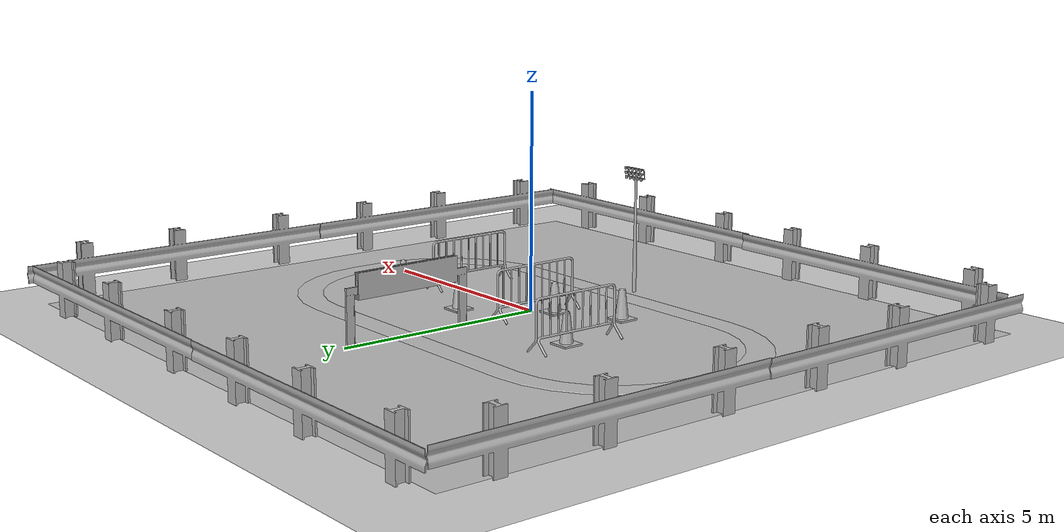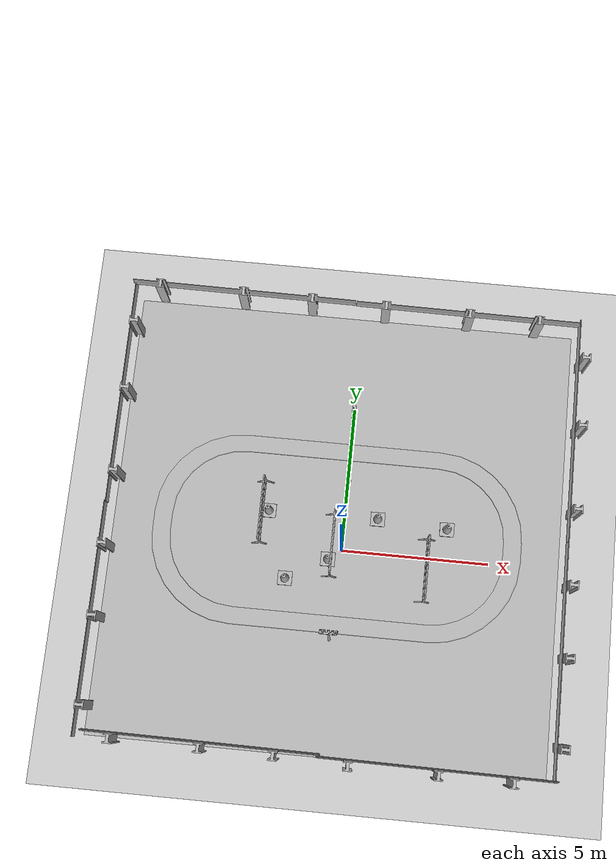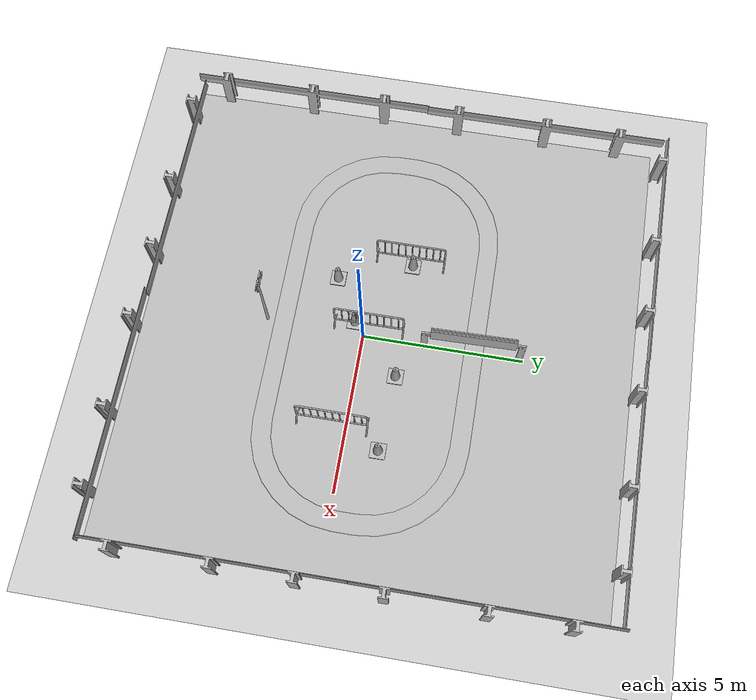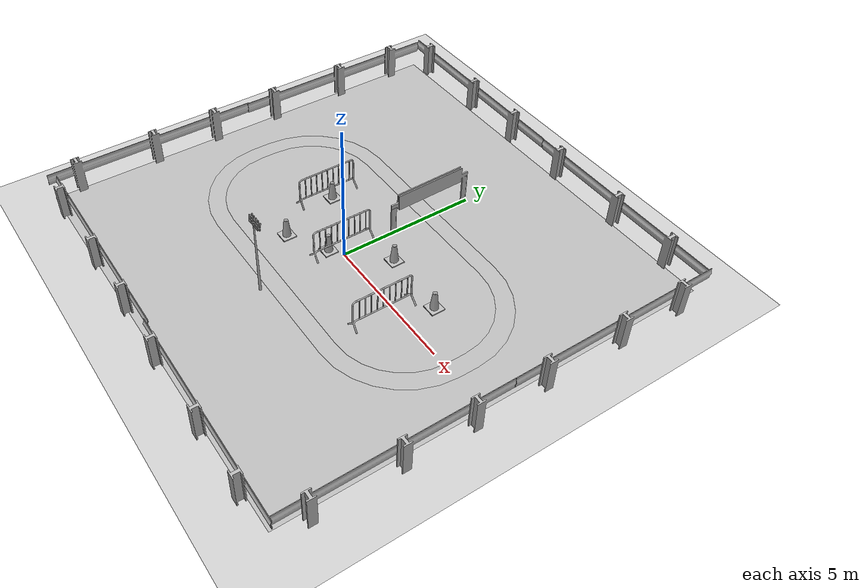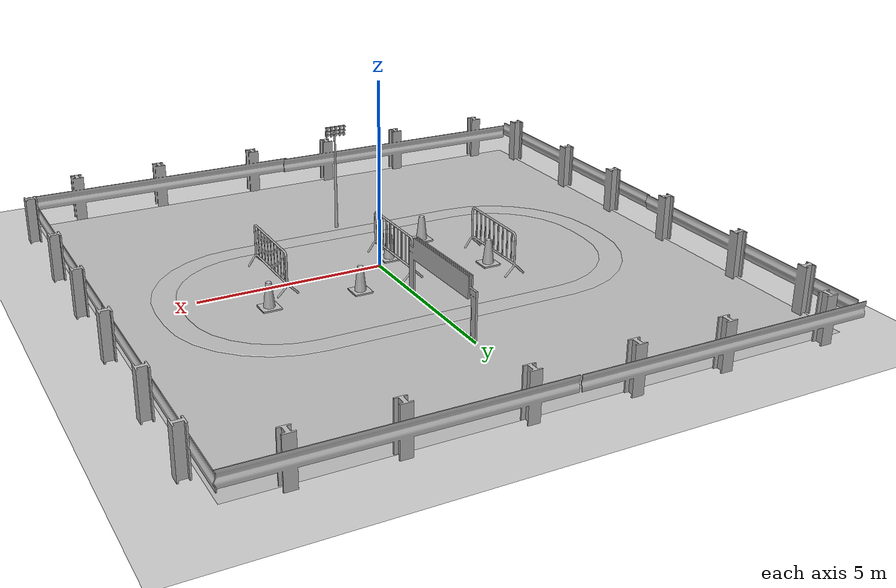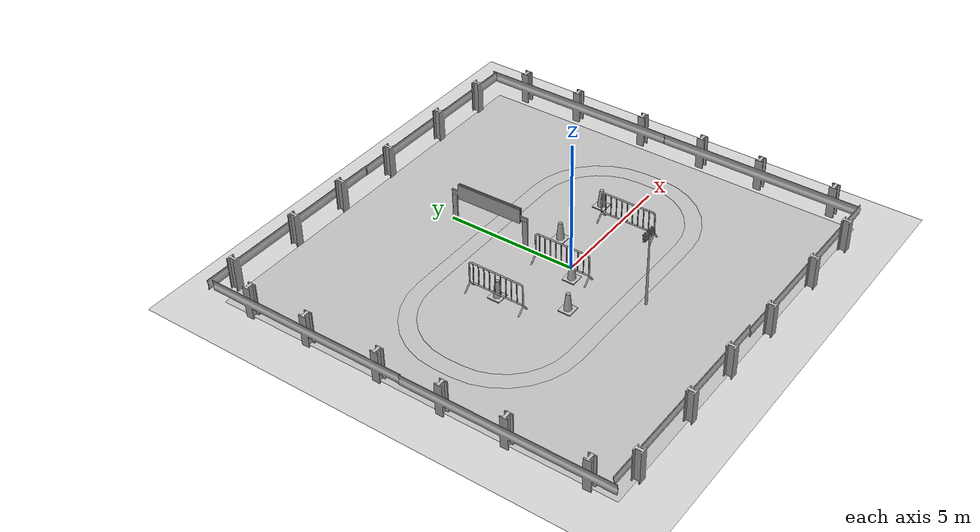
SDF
<sdf version="1.7">
 <world name="default">
  <light name="sun" type="directional">
   <pose>0 0 10 0 -0 0</pose>
   <diffuse>0.8 0.8 0.8 1</diffuse>
   <specular>0.2 0.2 0.2 1</specular>
   <attenuation>
    <range>1000</range>
    <constant>0.9</constant>
    <linear>0.01</linear>
    <quadratic>0.001</quadratic>
   </attenuation>
   <direction>-0.5 0.1 -0.9</direction>
   <spot><inner_angle>0</inner_angle><outer_angle>0</outer_angle><falloff>0</falloff></spot>
  </light>
  <model name="ground_plane">
   <static>1</static>
   <link name="link">
    <collision name="collision">
     <geometry><plane><normal>0 0 1</normal><size>100 100</size></plane></geometry>
     <surface><friction><ode><mu>100</mu><mu2>50</mu2></ode></friction></surface>
    </collision>
    <visual name="visual">
     <cast_shadows>0</cast_shadows>
     <geometry><plane><normal>0 0 1</normal><size>100 100</size></plane></geometry>
     <material>
      <script><uri>file://media/materials/scripts/gazebo.material</uri><name>Gazebo/Grey</name></script>
     </material>
    </visual>
   </link>
  </model>
  <gravity>0 0 -9.8</gravity>
  <magnetic_field>6e-06 2.3e-05 -4.2e-05</magnetic_field>
  <atmosphere type="adiabatic"/>
  <physics type="ode">
   <max_step_size>0.001</max_step_size>
   <real_time_factor>1</real_time_factor>
   <real_time_update_rate>1000</real_time_update_rate>
  </physics>
  <scene><ambient>0.4 0.4 0.4 1</ambient><background>0.7 0.7 0.7 1</background><shadows>1</shadows></scene>
  <audio><device>default</device></audio>
  <spherical_coordinates>
   <surface_model>EARTH_WGS84</surface_model>
   <latitude_deg>0</latitude_deg>
   <longitude_deg>0</longitude_deg>
   <elevation>0</elevation>
   <heading_deg>0</heading_deg>
  </spherical_coordinates>
  <model name="aws_Track_05">
   <link name="body">
    <inertial>
     <mass>1000</mass>
     <inertia><ixx>1</ixx><ixy>0</ixy><ixz>0</ixz><iyy>1</iyy><iyz>0</iyz><izz>1</izz></inertia>
    </inertial>
    <visual name="visual">
     <geometry>
      <mesh>
       <scale>0.2 0.2 0.2</scale>
       <uri>file://models/aws_robomaker_racetrack_Track_05/meshes/aws_Track_05_visual.DAE</uri>
      </mesh>
     </geometry>
     <material><shader type="pixel"><normal_map>__default__</normal_map></shader></material>
     <meta><layer>0</layer></meta>
    </visual>
    <collision name="collision_0">
     <geometry>
      <mesh>
       <uri>file://models/aws_robomaker_racetrack_Track_05/meshes/aws_Track_05_collision.DAE</uri>
       <scale>0.2 0.2 0.2</scale>
      </mesh>
     </geometry>
     <surface>
      <friction>
       <ode><mu>1</mu><mu2>1</mu2><fdir1>0 0 0</fdir1><slip1>0</slip1><slip2>0</slip2></ode>
       <torsional>
        <coefficient>1</coefficient>
        <patch_radius>0</patch_radius>
        <surface_radius>0</surface_radius>
        <use_patch_radius>1</use_patch_radius>
        <ode><slip>0</slip></ode>
       </torsional>
      </friction>
      <bounce><restitution_coefficient>0</restitution_coefficient><threshold>1e+06</threshold></bounce>
      <contact>
       <collide_without_contact>0</collide_without_contact>
       <collide_without_contact_bitmask>1</collide_without_contact_bitmask>
       <collide_bitmask>1</collide_bitmask>
       <ode>
        <soft_cfm>0</soft_cfm>
        <soft_erp>0.2</soft_erp>
        <kp>1e+13</kp>
        <kd>1</kd>
        <max_vel>0.01</max_vel>
        <min_depth>0</min_depth>
       </ode>
       <bullet>
        <split_impulse>1</split_impulse>
        <split_impulse_penetration_threshold>-0.01</split_impulse_penetration_threshold>
        <soft_cfm>0</soft_cfm>
        <soft_erp>0.2</soft_erp>
        <kp>1e+13</kp>
        <kd>1</kd>
       </bullet>
      </contact>
     </surface>
    </collision>
   </link>
   <static>1</static>
   <pose>0.636971 0.465555 0 0 -0 0</pose>
  </model>
  <model name="aws_Billboard_01">
   <link name="body">
    <inertial>
     <mass>1000</mass>
     <inertia><ixx>1</ixx><ixy>0</ixy><ixz>0</ixz><iyy>1</iyy><iyz>0</iyz><izz>1</izz></inertia>
    </inertial>
    <visual name="visual">
     <geometry>
      <mesh>
       <scale>0.2 0.2 0.2</scale>
       <uri>file://models/aws_robomaker_racetrack_Billboard_01/meshes/aws_Billboard_01_visual.DAE</uri>
      </mesh>
     </geometry>
     <material><shader type="pixel"><normal_map>__default__</normal_map></shader></material>
     <meta><layer>2</layer></meta>
    </visual>
    <collision name="collision_0">
     <geometry>
      <mesh>
       <uri>file://models/aws_robomaker_racetrack_Billboard_01/meshes/aws_Billboard_01_collision.DAE</uri>
       <scale>0.2 0.2 0.2</scale>
      </mesh>
     </geometry>
     <surface>
      <friction>
       <ode><mu>1</mu><mu2>1</mu2><fdir1>0 0 0</fdir1><slip1>0</slip1><slip2>0</slip2></ode>
       <torsional>
        <coefficient>1</coefficient>
        <patch_radius>0</patch_radius>
        <surface_radius>0</surface_radius>
        <use_patch_radius>1</use_patch_radius>
        <ode><slip>0</slip></ode>
       </torsional>
      </friction>
      <bounce><restitution_coefficient>0</restitution_coefficient><threshold>1e+06</threshold></bounce>
      <contact>
       <collide_without_contact>0</collide_without_contact>
       <collide_without_contact_bitmask>1</collide_without_contact_bitmask>
       <collide_bitmask>1</collide_bitmask>
       <ode>
        <soft_cfm>0</soft_cfm>
        <soft_erp>0.2</soft_erp>
        <kp>1e+13</kp>
        <kd>1</kd>
        <max_vel>0.01</max_vel>
        <min_depth>0</min_depth>
       </ode>
       <bullet>
        <split_impulse>1</split_impulse>
        <split_impulse_penetration_threshold>-0.01</split_impulse_penetration_threshold>
        <soft_cfm>0</soft_cfm>
        <soft_erp>0.2</soft_erp>
        <kp>1e+13</kp>
        <kd>1</kd>
       </bullet>
      </contact>
     </surface>
    </collision>
   </link>
   <static>1</static>
   <pose>-0.00816 3.3887 0 0 -0 1.58855</pose>
  </model>
  <model name="aws_Light_01">
   <link name="body">
    <inertial>
     <mass>100</mass>
     <inertia><ixx>1</ixx><ixy>0</ixy><ixz>0</ixz><iyy>1</iyy><iyz>0</iyz><izz>1</izz></inertia>
    </inertial>
    <visual name="visual">
     <geometry>
      <mesh>
       <scale>0.2 0.2 0.2</scale>
       <uri>file://models/aws_robomaker_racetrack_Light_01/meshes/aws_Light_01_visual.DAE</uri>
      </mesh>
     </geometry>
     <material><shader type="pixel"><normal_map>__default__</normal_map></shader></material>
     <meta><layer>0</layer></meta>
    </visual>
    <collision name="collision_0">
     <geometry>
      <mesh>
       <uri>file://models/aws_robomaker_racetrack_Light_01/meshes/aws_Light_01_collision.DAE</uri>
       <scale>0.2 0.2 0.2</scale>
      </mesh>
     </geometry>
     <surface>
      <friction>
       <ode><mu>1</mu><mu2>1</mu2><fdir1>0 0 0</fdir1><slip1>0</slip1><slip2>0</slip2></ode>
       <torsional>
        <coefficient>1</coefficient>
        <patch_radius>0</patch_radius>
        <surface_radius>0</surface_radius>
        <use_patch_radius>1</use_patch_radius>
        <ode><slip>0</slip></ode>
       </torsional>
      </friction>
      <bounce><restitution_coefficient>0</restitution_coefficient><threshold>1e+06</threshold></bounce>
      <contact>
       <collide_without_contact>0</collide_without_contact>
       <collide_without_contact_bitmask>1</collide_without_contact_bitmask>
       <collide_bitmask>1</collide_bitmask>
       <ode>
        <soft_cfm>0</soft_cfm>
        <soft_erp>0.2</soft_erp>
        <kp>1e+13</kp>
        <kd>1</kd>
        <max_vel>0.01</max_vel>
        <min_depth>0</min_depth>
       </ode>
       <bullet>
        <split_impulse>1</split_impulse>
        <split_impulse_penetration_threshold>-0.01</split_impulse_penetration_threshold>
        <soft_cfm>0</soft_cfm>
        <soft_erp>0.2</soft_erp>
        <kp>1e+13</kp>
        <kd>1</kd>
       </bullet>
      </contact>
     </surface>
    </collision>
   </link>
   <static>1</static>
   <pose>-0.128059 -3.01186 0 0 -0 0</pose>
  </model>
  <model name="aws_Fence_01">
   <link name="body">
    <inertial>
     <mass>5</mass>
     <inertia><ixx>1</ixx><ixy>0</ixy><ixz>0</ixz><iyy>1</iyy><iyz>0</iyz><izz>1</izz></inertia>
    </inertial>
    <visual name="visual">
     <geometry>
      <mesh><uri>file://models/aws_robomaker_racetrack_Fence_01/meshes/aws_Fence_01_visual.DAE</uri></mesh>
     </geometry>
     <material><shader type="pixel"><normal_map>__default__</normal_map></shader></material>
     <meta><layer>0</layer></meta>
    </visual>
    <collision name="collision_0">
     <geometry>
      <mesh>
       <uri>file://models/aws_robomaker_racetrack_Fence_01/meshes/aws_Fence_01_collision.DAE</uri>
       <scale>1 1 1</scale>
      </mesh>
     </geometry>
     <surface>
      <friction>
       <ode><mu>1</mu><mu2>1</mu2><fdir1>0 0 0</fdir1><slip1>0</slip1><slip2>0</slip2></ode>
       <torsional>
        <coefficient>1</coefficient>
        <patch_radius>0</patch_radius>
        <surface_radius>0</surface_radius>
        <use_patch_radius>1</use_patch_radius>
        <ode><slip>0</slip></ode>
       </torsional>
      </friction>
      <bounce><restitution_coefficient>0</restitution_coefficient><threshold>1e+06</threshold></bounce>
      <contact>
       <collide_without_contact>0</collide_without_contact>
       <collide_without_contact_bitmask>1</collide_without_contact_bitmask>
       <collide_bitmask>1</collide_bitmask>
       <ode>
        <soft_cfm>0</soft_cfm>
        <soft_erp>0.2</soft_erp>
        <kp>1e+13</kp>
        <kd>1</kd>
        <max_vel>0.01</max_vel>
        <min_depth>0</min_depth>
       </ode>
       <bullet>
        <split_impulse>1</split_impulse>
        <split_impulse_penetration_threshold>-0.01</split_impulse_penetration_threshold>
        <soft_cfm>0</soft_cfm>
        <soft_erp>0.2</soft_erp>
        <kp>1e+13</kp>
        <kd>1</kd>
       </bullet>
      </contact>
     </surface>
    </collision>
   </link>
   <static>1</static>
   <pose>7.67562 -3.0016 0 0 -0 0</pose>
  </model>
  <model name="aws_Fence_01_clone">
   <link name="body">
    <inertial>
     <mass>5</mass>
     <inertia><ixx>1</ixx><ixy>0</ixy><ixz>0</ixz><iyy>1</iyy><iyz>0</iyz><izz>1</izz></inertia>
    </inertial>
    <visual name="visual">
     <geometry>
      <mesh><uri>file://models/aws_robomaker_racetrack_Fence_01/meshes/aws_Fence_01_visual.DAE</uri></mesh>
     </geometry>
     <material><shader type="pixel"><normal_map>__default__</normal_map></shader></material>
     <meta><layer>0</layer></meta>
    </visual>
    <collision name="collision_0">
     <geometry>
      <mesh>
       <uri>file://models/aws_robomaker_racetrack_Fence_01/meshes/aws_Fence_01_collision.DAE</uri>
       <scale>1 1 1</scale>
      </mesh>
     </geometry>
     <surface>
      <friction>
       <ode><mu>1</mu><mu2>1</mu2><fdir1>0 0 0</fdir1><slip1>0</slip1><slip2>0</slip2></ode>
       <torsional>
        <coefficient>1</coefficient>
        <patch_radius>0</patch_radius>
        <surface_radius>0</surface_radius>
        <use_patch_radius>1</use_patch_radius>
        <ode><slip>0</slip></ode>
       </torsional>
      </friction>
      <bounce><restitution_coefficient>0</restitution_coefficient><threshold>1e+06</threshold></bounce>
      <contact>
       <collide_without_contact>0</collide_without_contact>
       <collide_without_contact_bitmask>1</collide_without_contact_bitmask>
       <collide_bitmask>1</collide_bitmask>
       <ode>
        <soft_cfm>0</soft_cfm>
        <soft_erp>0.2</soft_erp>
        <kp>1e+13</kp>
        <kd>1</kd>
        <max_vel>0.01</max_vel>
        <min_depth>0</min_depth>
       </ode>
       <bullet>
        <split_impulse>1</split_impulse>
        <split_impulse_penetration_threshold>-0.01</split_impulse_penetration_threshold>
        <soft_cfm>0</soft_cfm>
        <soft_erp>0.2</soft_erp>
        <kp>1e+13</kp>
        <kd>1</kd>
       </bullet>
      </contact>
     </surface>
    </collision>
   </link>
   <static>1</static>
   <pose>7.67862 4.82855 0 0 -0 0</pose>
  </model>
  <model name="aws_Fence_01_clone_0">
   <link name="body">
    <inertial>
     <mass>5</mass>
     <inertia><ixx>1</ixx><ixy>0</ixy><ixz>0</ixz><iyy>1</iyy><iyz>0</iyz><izz>1</izz></inertia>
    </inertial>
    <visual name="visual">
     <geometry>
      <mesh><uri>file://models/aws_robomaker_racetrack_Fence_01/meshes/aws_Fence_01_visual.DAE</uri></mesh>
     </geometry>
     <material><shader type="pixel"><normal_map>__default__</normal_map></shader></material>
     <meta><layer>0</layer></meta>
    </visual>
    <collision name="collision_0">
     <geometry>
      <mesh>
       <uri>file://models/aws_robomaker_racetrack_Fence_01/meshes/aws_Fence_01_collision.DAE</uri>
       <scale>1 1 1</scale>
      </mesh>
     </geometry>
     <surface>
      <friction>
       <ode><mu>1</mu><mu2>1</mu2><fdir1>0 0 0</fdir1><slip1>0</slip1><slip2>0</slip2></ode>
       <torsional>
        <coefficient>1</coefficient>
        <patch_radius>0</patch_radius>
        <surface_radius>0</surface_radius>
        <use_patch_radius>1</use_patch_radius>
        <ode><slip>0</slip></ode>
       </torsional>
      </friction>
      <bounce><restitution_coefficient>0</restitution_coefficient><threshold>1e+06</threshold></bounce>
      <contact>
       <collide_without_contact>0</collide_without_contact>
       <collide_without_contact_bitmask>1</collide_without_contact_bitmask>
       <collide_bitmask>1</collide_bitmask>
       <ode>
        <soft_cfm>0</soft_cfm>
        <soft_erp>0.2</soft_erp>
        <kp>1e+13</kp>
        <kd>1</kd>
        <max_vel>0.01</max_vel>
        <min_depth>0</min_depth>
       </ode>
       <bullet>
        <split_impulse>1</split_impulse>
        <split_impulse_penetration_threshold>-0.01</split_impulse_penetration_threshold>
        <soft_cfm>0</soft_cfm>
        <soft_erp>0.2</soft_erp>
        <kp>1e+13</kp>
        <kd>1</kd>
       </bullet>
      </contact>
     </surface>
    </collision>
   </link>
   <static>1</static>
   <pose>-7.90693 -3.06334 0 0 -0 0</pose>
  </model>
  <model name="aws_Fence_01_clone_1">
   <link name="body">
    <inertial>
     <mass>5</mass>
     <inertia><ixx>1</ixx><ixy>0</ixy><ixz>0</ixz><iyy>1</iyy><iyz>0</iyz><izz>1</izz></inertia>
    </inertial>
    <visual name="visual">
     <geometry>
      <mesh><uri>file://models/aws_robomaker_racetrack_Fence_01/meshes/aws_Fence_01_visual.DAE</uri></mesh>
     </geometry>
     <material><shader type="pixel"><normal_map>__default__</normal_map></shader></material>
     <meta><layer>0</layer></meta>
    </visual>
    <collision name="collision_0">
     <geometry>
      <mesh>
       <uri>file://models/aws_robomaker_racetrack_Fence_01/meshes/aws_Fence_01_collision.DAE</uri>
       <scale>1 1 1</scale>
      </mesh>
     </geometry>
     <surface>
      <friction>
       <ode><mu>1</mu><mu2>1</mu2><fdir1>0 0 0</fdir1><slip1>0</slip1><slip2>0</slip2></ode>
       <torsional>
        <coefficient>1</coefficient>
        <patch_radius>0</patch_radius>
        <surface_radius>0</surface_radius>
        <use_patch_radius>1</use_patch_radius>
        <ode><slip>0</slip></ode>
       </torsional>
      </friction>
      <bounce><restitution_coefficient>0</restitution_coefficient><threshold>1e+06</threshold></bounce>
      <contact>
       <collide_without_contact>0</collide_without_contact>
       <collide_without_contact_bitmask>1</collide_without_contact_bitmask>
       <collide_bitmask>1</collide_bitmask>
       <ode>
        <soft_cfm>0</soft_cfm>
        <soft_erp>0.2</soft_erp>
        <kp>1e+13</kp>
        <kd>1</kd>
        <max_vel>0.01</max_vel>
        <min_depth>0</min_depth>
       </ode>
       <bullet>
        <split_impulse>1</split_impulse>
        <split_impulse_penetration_threshold>-0.01</split_impulse_penetration_threshold>
        <soft_cfm>0</soft_cfm>
        <soft_erp>0.2</soft_erp>
        <kp>1e+13</kp>
        <kd>1</kd>
       </bullet>
      </contact>
     </surface>
    </collision>
   </link>
   <static>1</static>
   <pose>-7.86984 4.70948 0 0 -0 0</pose>
  </model>
  <model name="aws_Fence_01_0">
   <link name="body">
    <inertial>
     <mass>5</mass>
     <inertia><ixx>1</ixx><ixy>0</ixy><ixz>0</ixz><iyy>1</iyy><iyz>0</iyz><izz>1</izz></inertia>
    </inertial>
    <visual name="visual">
     <geometry>
      <mesh><uri>file://models/aws_robomaker_racetrack_Fence_01/meshes/aws_Fence_01_visual.DAE</uri></mesh>
     </geometry>
     <material><shader type="pixel"><normal_map>__default__</normal_map></shader></material>
     <meta><layer>0</layer></meta>
    </visual>
    <collision name="collision_0">
     <geometry>
      <mesh>
       <uri>file://models/aws_robomaker_racetrack_Fence_01/meshes/aws_Fence_01_collision.DAE</uri>
       <scale>1 1 1</scale>
      </mesh>
     </geometry>
     <surface>
      <friction>
       <ode><mu>1</mu><mu2>1</mu2><fdir1>0 0 0</fdir1><slip1>0</slip1><slip2>0</slip2></ode>
       <torsional>
        <coefficient>1</coefficient>
        <patch_radius>0</patch_radius>
        <surface_radius>0</surface_radius>
        <use_patch_radius>1</use_patch_radius>
        <ode><slip>0</slip></ode>
       </torsional>
      </friction>
      <bounce><restitution_coefficient>0</restitution_coefficient><threshold>1e+06</threshold></bounce>
      <contact>
       <collide_without_contact>0</collide_without_contact>
       <collide_without_contact_bitmask>1</collide_without_contact_bitmask>
       <collide_bitmask>1</collide_bitmask>
       <ode>
        <soft_cfm>0</soft_cfm>
        <soft_erp>0.2</soft_erp>
        <kp>1e+13</kp>
        <kd>1</kd>
        <max_vel>0.01</max_vel>
        <min_depth>0</min_depth>
       </ode>
       <bullet>
        <split_impulse>1</split_impulse>
        <split_impulse_penetration_threshold>-0.01</split_impulse_penetration_threshold>
        <soft_cfm>0</soft_cfm>
        <soft_erp>0.2</soft_erp>
        <kp>1e+13</kp>
        <kd>1</kd>
       </bullet>
      </contact>
     </surface>
    </collision>
   </link>
   <static>1</static>
   <pose>3.61196 8.47772 0 0 0 -1.57841</pose>
  </model>
  <model name="aws_Fence_01_0_clone">
   <link name="body">
    <inertial>
     <mass>5</mass>
     <inertia><ixx>1</ixx><ixy>0</ixy><ixz>0</ixz><iyy>1</iyy><iyz>0</iyz><izz>1</izz></inertia>
    </inertial>
    <visual name="visual">
     <geometry>
      <mesh><uri>file://models/aws_robomaker_racetrack_Fence_01/meshes/aws_Fence_01_visual.DAE</uri></mesh>
     </geometry>
     <material><shader type="pixel"><normal_map>__default__</normal_map></shader></material>
     <meta><layer>0</layer></meta>
    </visual>
    <collision name="collision_0">
     <geometry>
      <mesh>
       <uri>file://models/aws_robomaker_racetrack_Fence_01/meshes/aws_Fence_01_collision.DAE</uri>
       <scale>1 1 1</scale>
      </mesh>
     </geometry>
     <surface>
      <friction>
       <ode><mu>1</mu><mu2>1</mu2><fdir1>0 0 0</fdir1><slip1>0</slip1><slip2>0</slip2></ode>
       <torsional>
        <coefficient>1</coefficient>
        <patch_radius>0</patch_radius>
        <surface_radius>0</surface_radius>
        <use_patch_radius>1</use_patch_radius>
        <ode><slip>0</slip></ode>
       </torsional>
      </friction>
      <bounce><restitution_coefficient>0</restitution_coefficient><threshold>1e+06</threshold></bounce>
      <contact>
       <collide_without_contact>0</collide_without_contact>
       <collide_without_contact_bitmask>1</collide_without_contact_bitmask>
       <collide_bitmask>1</collide_bitmask>
       <ode>
        <soft_cfm>0</soft_cfm>
        <soft_erp>0.2</soft_erp>
        <kp>1e+13</kp>
        <kd>1</kd>
        <max_vel>0.01</max_vel>
        <min_depth>0</min_depth>
       </ode>
       <bullet>
        <split_impulse>1</split_impulse>
        <split_impulse_penetration_threshold>-0.01</split_impulse_penetration_threshold>
        <soft_cfm>0</soft_cfm>
        <soft_erp>0.2</soft_erp>
        <kp>1e+13</kp>
        <kd>1</kd>
       </bullet>
      </contact>
     </surface>
    </collision>
   </link>
   <static>1</static>
   <pose>-4.24183 8.55452 0 0 0 -1.57841</pose>
  </model>
  <model name="aws_Fence_01_0_clone_0">
   <link name="body">
    <inertial>
     <mass>5</mass>
     <inertia><ixx>1</ixx><ixy>0</ixy><ixz>0</ixz><iyy>1</iyy><iyz>0</iyz><izz>1</izz></inertia>
    </inertial>
    <visual name="visual">
     <geometry>
      <mesh><uri>file://models/aws_robomaker_racetrack_Fence_01/meshes/aws_Fence_01_visual.DAE</uri></mesh>
     </geometry>
     <material><shader type="pixel"><normal_map>__default__</normal_map></shader></material>
     <meta><layer>0</layer></meta>
    </visual>
    <collision name="collision_0">
     <geometry>
      <mesh>
       <uri>file://models/aws_robomaker_racetrack_Fence_01/meshes/aws_Fence_01_collision.DAE</uri>
       <scale>1 1 1</scale>
      </mesh>
     </geometry>
     <surface>
      <friction>
       <ode><mu>1</mu><mu2>1</mu2><fdir1>0 0 0</fdir1><slip1>0</slip1><slip2>0</slip2></ode>
       <torsional>
        <coefficient>1</coefficient>
        <patch_radius>0</patch_radius>
        <surface_radius>0</surface_radius>
        <use_patch_radius>1</use_patch_radius>
        <ode><slip>0</slip></ode>
       </torsional>
      </friction>
      <bounce><restitution_coefficient>0</restitution_coefficient><threshold>1e+06</threshold></bounce>
      <contact>
       <collide_without_contact>0</collide_without_contact>
       <collide_without_contact_bitmask>1</collide_without_contact_bitmask>
       <collide_bitmask>1</collide_bitmask>
       <ode>
        <soft_cfm>0</soft_cfm>
        <soft_erp>0.2</soft_erp>
        <kp>1e+13</kp>
        <kd>1</kd>
        <max_vel>0.01</max_vel>
        <min_depth>0</min_depth>
       </ode>
       <bullet>
        <split_impulse>1</split_impulse>
        <split_impulse_penetration_threshold>-0.01</split_impulse_penetration_threshold>
        <soft_cfm>0</soft_cfm>
        <soft_erp>0.2</soft_erp>
        <kp>1e+13</kp>
        <kd>1</kd>
       </bullet>
      </contact>
     </surface>
    </collision>
   </link>
   <static>1</static>
   <pose>3.72458 -7.03634 0 0 0 -1.57841</pose>
  </model>
  <model name="aws_Fence_01_0_clone_0_clone">
   <link name="body">
    <inertial>
     <mass>5</mass>
     <inertia><ixx>1</ixx><ixy>0</ixy><ixz>0</ixz><iyy>1</iyy><iyz>0</iyz><izz>1</izz></inertia>
    </inertial>
    <visual name="visual">
     <geometry>
      <mesh><uri>file://models/aws_robomaker_racetrack_Fence_01/meshes/aws_Fence_01_visual.DAE</uri></mesh>
     </geometry>
     <material><shader type="pixel"><normal_map>__default__</normal_map></shader></material>
     <meta><layer>0</layer></meta>
    </visual>
    <collision name="collision_0">
     <geometry>
      <mesh>
       <uri>file://models/aws_robomaker_racetrack_Fence_01/meshes/aws_Fence_01_collision.DAE</uri>
       <scale>1 1 1</scale>
      </mesh>
     </geometry>
     <surface>
      <friction>
       <ode><mu>1</mu><mu2>1</mu2><fdir1>0 0 0</fdir1><slip1>0</slip1><slip2>0</slip2></ode>
       <torsional>
        <coefficient>1</coefficient>
        <patch_radius>0</patch_radius>
        <surface_radius>0</surface_radius>
        <use_patch_radius>1</use_patch_radius>
        <ode><slip>0</slip></ode>
       </torsional>
      </friction>
      <bounce><restitution_coefficient>0</restitution_coefficient><threshold>1e+06</threshold></bounce>
      <contact>
       <collide_without_contact>0</collide_without_contact>
       <collide_without_contact_bitmask>1</collide_without_contact_bitmask>
       <collide_bitmask>1</collide_bitmask>
       <ode>
        <soft_cfm>0</soft_cfm>
        <soft_erp>0.2</soft_erp>
        <kp>1e+13</kp>
        <kd>1</kd>
        <max_vel>0.01</max_vel>
        <min_depth>0</min_depth>
       </ode>
       <bullet>
        <split_impulse>1</split_impulse>
        <split_impulse_penetration_threshold>-0.01</split_impulse_penetration_threshold>
        <soft_cfm>0</soft_cfm>
        <soft_erp>0.2</soft_erp>
        <kp>1e+13</kp>
        <kd>1</kd>
       </bullet>
      </contact>
     </surface>
    </collision>
   </link>
   <static>1</static>
   <pose>-3.96957 -6.89814 0 0 0 -1.57841</pose>
  </model>
  <model name="aws_Fence_02">
   <link name="body">
    <inertial>
     <mass>5</mass>
     <inertia><ixx>9.6</ixx><ixy>0</ixy><ixz>0</ixz><iyy>8.2</iyy><iyz>0</iyz><izz>2.1</izz></inertia>
    </inertial>
    <visual name="visual">
     <geometry>
      <mesh><uri>file://models/aws_robomaker_racetrack_Fence_02/meshes/aws_Fence_02_visual.DAE</uri></mesh>
     </geometry>
     <material><shader type="pixel"><normal_map>__default__</normal_map></shader></material>
     <meta><layer>0</layer></meta>
    </visual>
    <collision name="collision_0">
     <geometry>
      <mesh>
       <uri>file://models/aws_robomaker_racetrack_Fence_02/meshes/aws_Fence_02_collision.DAE</uri>
       <scale>1 1 1</scale>
      </mesh>
     </geometry>
     <surface>
      <friction>
       <ode><mu>1</mu><mu2>1</mu2><fdir1>0 0 0</fdir1><slip1>0</slip1><slip2>0</slip2></ode>
       <torsional>
        <coefficient>1</coefficient>
        <patch_radius>0</patch_radius>
        <surface_radius>0</surface_radius>
        <use_patch_radius>1</use_patch_radius>
        <ode><slip>0</slip></ode>
       </torsional>
      </friction>
      <bounce><restitution_coefficient>0</restitution_coefficient><threshold>1e+06</threshold></bounce>
      <contact>
       <collide_without_contact>0</collide_without_contact>
       <collide_without_contact_bitmask>1</collide_without_contact_bitmask>
       <collide_bitmask>1</collide_bitmask>
      </contact>
     </surface>
    </collision>
   </link>
   <static>1</static>
   <pose>2.85508 -0.424518 0 0 -0 0</pose>
  </model>
  <model name="aws_Fence_02_0">
   <link name="body">
    <inertial>
     <mass>5</mass>
     <inertia><ixx>9.6</ixx><ixy>0</ixy><ixz>0</ixz><iyy>8.2</iyy><iyz>0</iyz><izz>2.1</izz></inertia>
    </inertial>
    <visual name="visual">
     <geometry>
      <mesh><uri>file://models/aws_robomaker_racetrack_Fence_02/meshes/aws_Fence_02_visual.DAE</uri></mesh>
     </geometry>
     <material><shader type="pixel"><normal_map>__default__</normal_map></shader></material>
     <meta><layer>0</layer></meta>
    </visual>
    <collision name="collision_0">
     <geometry>
      <mesh>
       <uri>file://models/aws_robomaker_racetrack_Fence_02/meshes/aws_Fence_02_collision.DAE</uri>
       <scale>1 1 1</scale>
      </mesh>
     </geometry>
     <surface>
      <friction>
       <ode><mu>1</mu><mu2>1</mu2><fdir1>0 0 0</fdir1><slip1>0</slip1><slip2>0</slip2></ode>
       <torsional>
        <coefficient>1</coefficient>
        <patch_radius>0</patch_radius>
        <surface_radius>0</surface_radius>
        <use_patch_radius>1</use_patch_radius>
        <ode><slip>0</slip></ode>
       </torsional>
      </friction>
      <bounce><restitution_coefficient>0</restitution_coefficient><threshold>1e+06</threshold></bounce>
      <contact>
       <collide_without_contact>0</collide_without_contact>
       <collide_without_contact_bitmask>1</collide_without_contact_bitmask>
       <collide_bitmask>1</collide_bitmask>
      </contact>
     </surface>
    </collision>
   </link>
   <static>1</static>
   <pose>-2.82041 1.07222 0 0 -0 0</pose>
  </model>
  <model name="aws_Fence_02_1">
   <link name="body">
    <inertial>
     <mass>5</mass>
     <inertia><ixx>9.6</ixx><ixy>0</ixy><ixz>0</ixz><iyy>8.2</iyy><iyz>0</iyz><izz>2.1</izz></inertia>
    </inertial>
    <visual name="visual">
     <geometry>
      <mesh><uri>file://models/aws_robomaker_racetrack_Fence_02/meshes/aws_Fence_02_visual.DAE</uri></mesh>
     </geometry>
     <material><shader type="pixel"><normal_map>__default__</normal_map></shader></material>
     <meta><layer>0</layer></meta>
    </visual>
    <collision name="collision_0">
     <geometry>
      <mesh>
       <uri>file://models/aws_robomaker_racetrack_Fence_02/meshes/aws_Fence_02_collision.DAE</uri>
       <scale>1 1 1</scale>
      </mesh>
     </geometry>
     <surface>
      <friction>
       <ode><mu>1</mu><mu2>1</mu2><fdir1>0 0 0</fdir1><slip1>0</slip1><slip2>0</slip2></ode>
       <torsional>
        <coefficient>1</coefficient>
        <patch_radius>0</patch_radius>
        <surface_radius>0</surface_radius>
        <use_patch_radius>1</use_patch_radius>
        <ode><slip>0</slip></ode>
       </torsional>
      </friction>
      <bounce><restitution_coefficient>0</restitution_coefficient><threshold>1e+06</threshold></bounce>
      <contact>
       <collide_without_contact>0</collide_without_contact>
       <collide_without_contact_bitmask>1</collide_without_contact_bitmask>
       <collide_bitmask>1</collide_bitmask>
      </contact>
     </surface>
    </collision>
   </link>
   <static>1</static>
   <pose>-0.349737 0.143828 0 0 -0 0</pose>
  </model>
  <model name="aws_TrafficCone_01">
   <link name="body">
    <inertial>
     <mass>0.5</mass>
     <inertia><ixx>1</ixx><ixy>0</ixy><ixz>0</ixz><iyy>1</iyy><iyz>0</iyz><izz>1</izz></inertia>
    </inertial>
    <visual name="visual">
     <geometry>
      <mesh>
       <uri>file://models/aws_robomaker_racetrack_TrafficCone_01/meshes/aws_TrafficCone_01_visual.DAE</uri>
      </mesh>
     </geometry>
     <material><shader type="pixel"><normal_map>__default__</normal_map></shader></material>
     <meta><layer>0</layer></meta>
    </visual>
    <collision name="collision_0">
     <geometry>
      <mesh>
       <uri>file://models/aws_robomaker_racetrack_TrafficCone_01/meshes/aws_TrafficCone_01_coliision.DAE</uri>
       <scale>1 1 1</scale>
      </mesh>
     </geometry>
     <surface>
      <friction>
       <ode><mu>1</mu><mu2>1</mu2><fdir1>0 0 0</fdir1><slip1>0</slip1><slip2>0</slip2></ode>
       <torsional>
        <coefficient>1</coefficient>
        <patch_radius>0</patch_radius>
        <surface_radius>0</surface_radius>
        <use_patch_radius>1</use_patch_radius>
        <ode><slip>0</slip></ode>
       </torsional>
      </friction>
      <bounce><restitution_coefficient>0</restitution_coefficient><threshold>1e+06</threshold></bounce>
      <contact>
       <collide_without_contact>0</collide_without_contact>
       <collide_without_contact_bitmask>1</collide_without_contact_bitmask>
       <collide_bitmask>1</collide_bitmask>
       <ode>
        <soft_cfm>0</soft_cfm>
        <soft_erp>0.2</soft_erp>
        <kp>1e+13</kp>
        <kd>1</kd>
        <max_vel>0.01</max_vel>
        <min_depth>0</min_depth>
       </ode>
       <bullet>
        <split_impulse>1</split_impulse>
        <split_impulse_penetration_threshold>-0.01</split_impulse_penetration_threshold>
        <soft_cfm>0</soft_cfm>
        <soft_erp>0.2</soft_erp>
        <kp>1e+13</kp>
        <kd>1</kd>
       </bullet>
      </contact>
     </surface>
    </collision>
   </link>
   <static>1</static>
   <pose>-1.83058 -1.10851 0 0 -0 0</pose>
  </model>
  <model name="aws_TrafficCone_01_0">
   <link name="body">
    <inertial>
     <mass>0.5</mass>
     <inertia><ixx>1</ixx><ixy>0</ixy><ixz>0</ixz><iyy>1</iyy><iyz>0</iyz><izz>1</izz></inertia>
    </inertial>
    <visual name="visual">
     <geometry>
      <mesh>
       <uri>file://models/aws_robomaker_racetrack_TrafficCone_01/meshes/aws_TrafficCone_01_visual.DAE</uri>
      </mesh>
     </geometry>
     <material><shader type="pixel"><normal_map>__default__</normal_map></shader></material>
     <meta><layer>0</layer></meta>
    </visual>
    <collision name="collision_0">
     <geometry>
      <mesh>
       <uri>file://models/aws_robomaker_racetrack_TrafficCone_01/meshes/aws_TrafficCone_01_coliision.DAE</uri>
       <scale>1 1 1</scale>
      </mesh>
     </geometry>
     <surface>
      <friction>
       <ode><mu>1</mu><mu2>1</mu2><fdir1>0 0 0</fdir1><slip1>0</slip1><slip2>0</slip2></ode>
       <torsional>
        <coefficient>1</coefficient>
        <patch_radius>0</patch_radius>
        <surface_radius>0</surface_radius>
        <use_patch_radius>1</use_patch_radius>
        <ode><slip>0</slip></ode>
       </torsional>
      </friction>
      <bounce><restitution_coefficient>0</restitution_coefficient><threshold>1e+06</threshold></bounce>
      <contact>
       <collide_without_contact>0</collide_without_contact>
       <collide_without_contact_bitmask>1</collide_without_contact_bitmask>
       <collide_bitmask>1</collide_bitmask>
       <ode>
        <soft_cfm>0</soft_cfm>
        <soft_erp>0.2</soft_erp>
        <kp>1e+13</kp>
        <kd>1</kd>
        <max_vel>0.01</max_vel>
        <min_depth>0</min_depth>
       </ode>
       <bullet>
        <split_impulse>1</split_impulse>
        <split_impulse_penetration_threshold>-0.01</split_impulse_penetration_threshold>
        <soft_cfm>0</soft_cfm>
        <soft_erp>0.2</soft_erp>
        <kp>1e+13</kp>
        <kd>1</kd>
       </bullet>
      </contact>
     </surface>
    </collision>
   </link>
   <static>1</static>
   <pose>-0.442074 -0.326125 0 0 -0 0</pose>
  </model>
  <model name="aws_TrafficCone_01_1">
   <link name="body">
    <inertial>
     <mass>0.5</mass>
     <inertia><ixx>1</ixx><ixy>0</ixy><ixz>0</ixz><iyy>1</iyy><iyz>0</iyz><izz>1</izz></inertia>
    </inertial>
    <visual name="visual">
     <geometry>
      <mesh>
       <uri>file://models/aws_robomaker_racetrack_TrafficCone_01/meshes/aws_TrafficCone_01_visual.DAE</uri>
      </mesh>
     </geometry>
     <material><shader type="pixel"><normal_map>__default__</normal_map></shader></material>
     <meta><layer>0</layer></meta>
    </visual>
    <collision name="collision_0">
     <geometry>
      <mesh>
       <uri>file://models/aws_robomaker_racetrack_TrafficCone_01/meshes/aws_TrafficCone_01_coliision.DAE</uri>
       <scale>1 1 1</scale>
      </mesh>
     </geometry>
     <surface>
      <friction>
       <ode><mu>1</mu><mu2>1</mu2><fdir1>0 0 0</fdir1><slip1>0</slip1><slip2>0</slip2></ode>
       <torsional>
        <coefficient>1</coefficient>
        <patch_radius>0</patch_radius>
        <surface_radius>0</surface_radius>
        <use_patch_radius>1</use_patch_radius>
        <ode><slip>0</slip></ode>
       </torsional>
      </friction>
      <bounce><restitution_coefficient>0</restitution_coefficient><threshold>1e+06</threshold></bounce>
      <contact>
       <collide_without_contact>0</collide_without_contact>
       <collide_without_contact_bitmask>1</collide_without_contact_bitmask>
       <collide_bitmask>1</collide_bitmask>
       <ode>
        <soft_cfm>0</soft_cfm>
        <soft_erp>0.2</soft_erp>
        <kp>1e+13</kp>
        <kd>1</kd>
        <max_vel>0.01</max_vel>
        <min_depth>0</min_depth>
       </ode>
       <bullet>
        <split_impulse>1</split_impulse>
        <split_impulse_penetration_threshold>-0.01</split_impulse_penetration_threshold>
        <soft_cfm>0</soft_cfm>
        <soft_erp>0.2</soft_erp>
        <kp>1e+13</kp>
        <kd>1</kd>
       </bullet>
      </contact>
     </surface>
    </collision>
   </link>
   <static>1</static>
   <pose>-2.61218 1.16712 0 0 -0 0</pose>
  </model>
  <model name="aws_TrafficCone_01_2">
   <link name="body">
    <inertial>
     <mass>0.5</mass>
     <inertia><ixx>1</ixx><ixy>0</ixy><ixz>0</ixz><iyy>1</iyy><iyz>0</iyz><izz>1</izz></inertia>
    </inertial>
    <visual name="visual">
     <geometry>
      <mesh>
       <uri>file://models/aws_robomaker_racetrack_TrafficCone_01/meshes/aws_TrafficCone_01_visual.DAE</uri>
      </mesh>
     </geometry>
     <material><shader type="pixel"><normal_map>__default__</normal_map></shader></material>
     <meta><layer>0</layer></meta>
    </visual>
    <collision name="collision_0">
     <geometry>
      <mesh>
       <uri>file://models/aws_robomaker_racetrack_TrafficCone_01/meshes/aws_TrafficCone_01_coliision.DAE</uri>
       <scale>1 1 1</scale>
      </mesh>
     </geometry>
     <surface>
      <friction>
       <ode><mu>1</mu><mu2>1</mu2><fdir1>0 0 0</fdir1><slip1>0</slip1><slip2>0</slip2></ode>
       <torsional>
        <coefficient>1</coefficient>
        <patch_radius>0</patch_radius>
        <surface_radius>0</surface_radius>
        <use_patch_radius>1</use_patch_radius>
        <ode><slip>0</slip></ode>
       </torsional>
      </friction>
      <bounce><restitution_coefficient>0</restitution_coefficient><threshold>1e+06</threshold></bounce>
      <contact>
       <collide_without_contact>0</collide_without_contact>
       <collide_without_contact_bitmask>1</collide_without_contact_bitmask>
       <collide_bitmask>1</collide_bitmask>
       <ode>
        <soft_cfm>0</soft_cfm>
        <soft_erp>0.2</soft_erp>
        <kp>1e+13</kp>
        <kd>1</kd>
        <max_vel>0.01</max_vel>
        <min_depth>0</min_depth>
       </ode>
       <bullet>
        <split_impulse>1</split_impulse>
        <split_impulse_penetration_threshold>-0.01</split_impulse_penetration_threshold>
        <soft_cfm>0</soft_cfm>
        <soft_erp>0.2</soft_erp>
        <kp>1e+13</kp>
        <kd>1</kd>
       </bullet>
      </contact>
     </surface>
    </collision>
   </link>
   <static>1</static>
   <pose>1.13044 1.20691 0 0 -0 0</pose>
  </model>
  <model name="aws_TrafficCone_01_3">
   <link name="body">
    <inertial>
     <mass>0.5</mass>
     <inertia><ixx>1</ixx><ixy>0</ixy><ixz>0</ixz><iyy>1</iyy><iyz>0</iyz><izz>1</izz></inertia>
    </inertial>
    <visual name="visual">
     <geometry>
      <mesh>
       <uri>file://models/aws_robomaker_racetrack_TrafficCone_01/meshes/aws_TrafficCone_01_visual.DAE</uri>
      </mesh>
     </geometry>
     <material><shader type="pixel"><normal_map>__default__</normal_map></shader></material>
     <meta><layer>0</layer></meta>
    </visual>
    <collision name="collision_0">
     <geometry>
      <mesh>
       <uri>file://models/aws_robomaker_racetrack_TrafficCone_01/meshes/aws_TrafficCone_01_coliision.DAE</uri>
       <scale>1 1 1</scale>
      </mesh>
     </geometry>
     <surface>
      <friction>
       <ode><mu>1</mu><mu2>1</mu2><fdir1>0 0 0</fdir1><slip1>0</slip1><slip2>0</slip2></ode>
       <torsional>
        <coefficient>1</coefficient>
        <patch_radius>0</patch_radius>
        <surface_radius>0</surface_radius>
        <use_patch_radius>1</use_patch_radius>
        <ode><slip>0</slip></ode>
       </torsional>
      </friction>
      <bounce><restitution_coefficient>0</restitution_coefficient><threshold>1e+06</threshold></bounce>
      <contact>
       <collide_without_contact>0</collide_without_contact>
       <collide_without_contact_bitmask>1</collide_without_contact_bitmask>
       <collide_bitmask>1</collide_bitmask>
       <ode>
        <soft_cfm>0</soft_cfm>
        <soft_erp>0.2</soft_erp>
        <kp>1e+13</kp>
        <kd>1</kd>
        <max_vel>0.01</max_vel>
        <min_depth>0</min_depth>
       </ode>
       <bullet>
        <split_impulse>1</split_impulse>
        <split_impulse_penetration_threshold>-0.01</split_impulse_penetration_threshold>
        <soft_cfm>0</soft_cfm>
        <soft_erp>0.2</soft_erp>
        <kp>1e+13</kp>
        <kd>1</kd>
       </bullet>
      </contact>
     </surface>
    </collision>
   </link>
   <static>1</static>
   <pose>3.52014 1.06999 0 0 -0 0</pose>
  </model>
  <model name="aws_Ground_01">
   <link name="body">
    <inertial>
     <mass>10000</mass>
     <inertia><ixx>0</ixx><ixy>0</ixy><ixz>0</ixz><iyy>0</iyy><iyz>0</iyz><izz>0</izz></inertia>
    </inertial>
    <visual name="visual">
     <geometry>
      <mesh>
       <uri>file://models/aws_robomaker_racetrack_Ground_01/meshes/aws_Ground_01_visual.DAE</uri>
       <scale>0.018 0.018 0.2</scale>
      </mesh>
     </geometry>
     <material><shader type="pixel"><normal_map>__default__</normal_map></shader></material>
     <meta><layer>0</layer></meta>
    </visual>
    <collision name="collision_0">
     <geometry>
      <mesh>
       <uri>file://models/aws_robomaker_racetrack_Ground_01/meshes/aws_Ground_01_collision.DAE</uri>
       <scale>0.018 0.018 0.2</scale>
      </mesh>
     </geometry>
     <surface>
      <friction>
       <ode><mu>1</mu><mu2>1</mu2><fdir1>0 0 0</fdir1><slip1>0</slip1><slip2>0</slip2></ode>
       <torsional>
        <coefficient>1</coefficient>
        <patch_radius>0</patch_radius>
        <surface_radius>0</surface_radius>
        <use_patch_radius>1</use_patch_radius>
        <ode><slip>0</slip></ode>
       </torsional>
      </friction>
      <bounce><restitution_coefficient>0</restitution_coefficient><threshold>1e+06</threshold></bounce>
      <contact>
       <collide_without_contact>0</collide_without_contact>
       <collide_without_contact_bitmask>1</collide_without_contact_bitmask>
       <collide_bitmask>65535</collide_bitmask>
       <ode>
        <soft_cfm>0</soft_cfm>
        <soft_erp>0.2</soft_erp>
        <kp>1e+13</kp>
        <kd>1</kd>
        <max_vel>0.01</max_vel>
        <min_depth>0</min_depth>
       </ode>
       <bullet>
        <split_impulse>1</split_impulse>
        <split_impulse_penetration_threshold>-0.01</split_impulse_penetration_threshold>
        <soft_cfm>0</soft_cfm>
        <soft_erp>0.2</soft_erp>
        <kp>1e+13</kp>
        <kd>1</kd>
       </bullet>
      </contact>
     </surface>
    </collision>
   </link>
   <static>1</static>
   <pose>-0.244849 0.729675 0 0 -0 0</pose>
  </model>
 </world>
</sdf>
